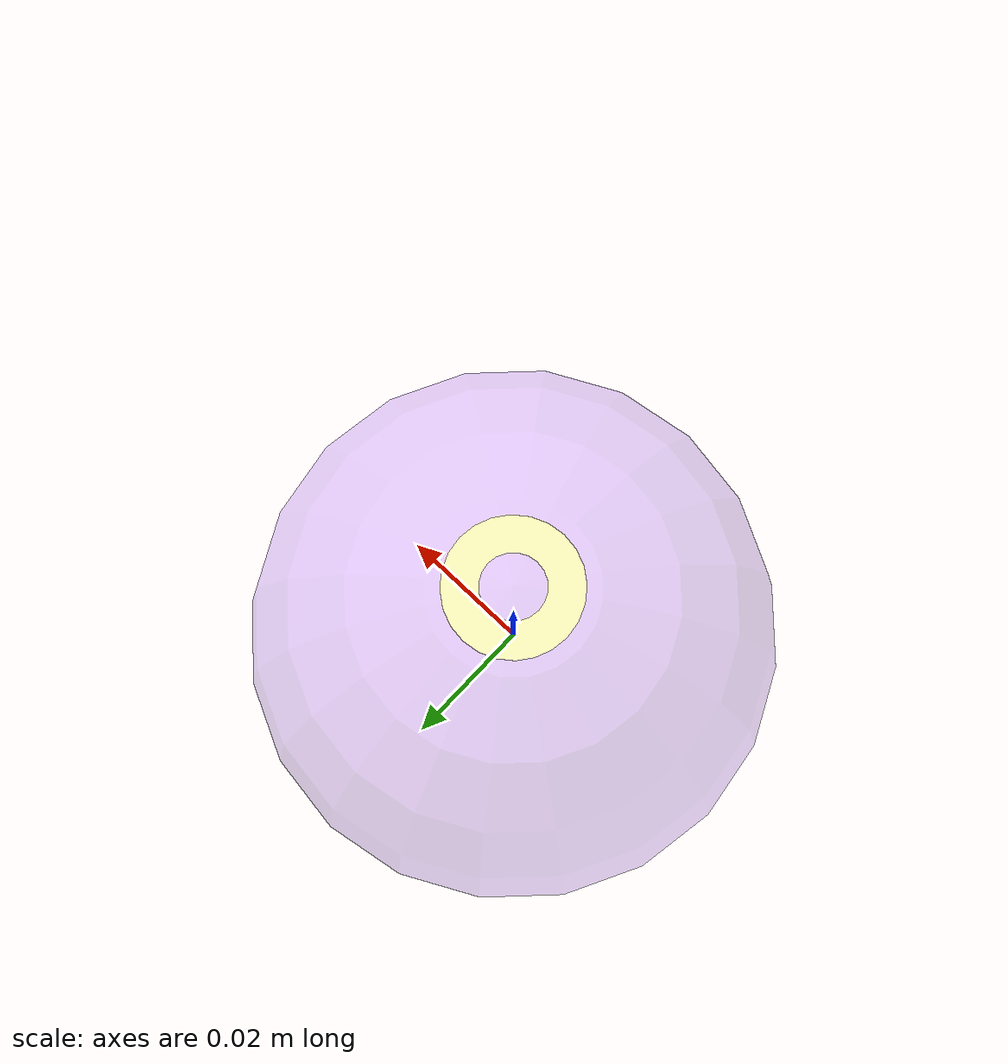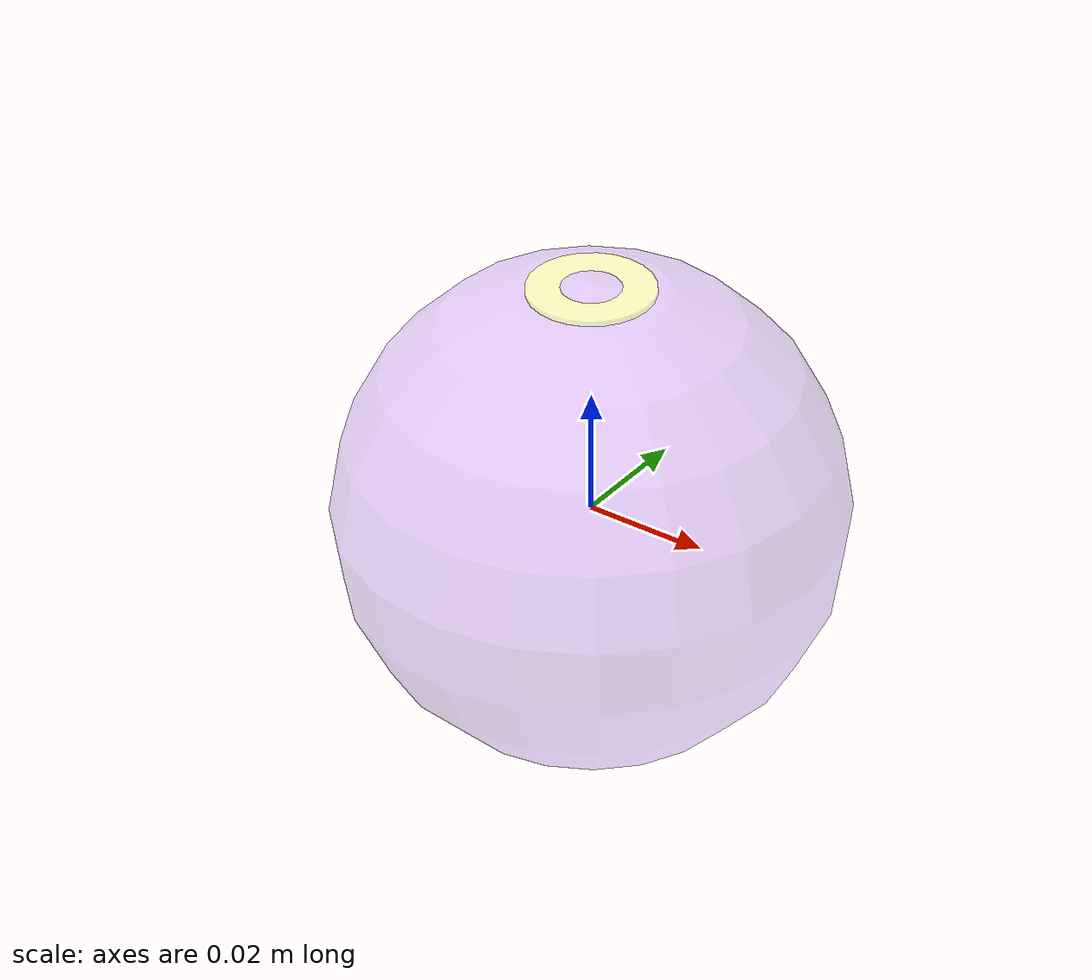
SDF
<?xml version="1.0"?>
<sdf version="1.7">
  <model name="000_my_sphere_visual">
    <link name="ball_base_link_visual">
      <inertial>
        <pose>0 0 0 0 0 0 </pose>
        <mass>1.</mass>
        <inertia>
          <ixx>6.4e-4</ixx>
          <ixy>0</ixy>
          <ixz>0</ixz>
          <iyy>6.4e-4</iyy>
          <iyz>0</iyz>
          <izz>6.4e-4</izz>
        </inertia>
      </inertial>
      <visual name="sphere_visual">
        <pose>0 0 0 0 0 0</pose>
        <geometry>
          <sphere>
            <radius>0.04</radius>
          </sphere>
        </geometry>
        <material>
          <diffuse>0.7 0.4 1. .3</diffuse>
        </material>
      </visual>
    </link>

    <!-- Add a link for visual, easy to see when spinning -->
    <link name="marker">
      <visual name="marker">
      <pose> 0 0 0 0 0 0 </pose>
        <geometry>
          <cylinder>
            <radius> 0.01 </radius>
            <length> 0.0785 </length>
            </cylinder>
        </geometry>
        <material>
          <diffuse> 1. 1. 0.2 .3</diffuse>
        </material>
      </visual>
    </link>

    <joint name="joint" type="fixed">
      <parent>ball_base_link_visual</parent>
      <child>marker</child>
    </joint>
  </model>
</sdf>
